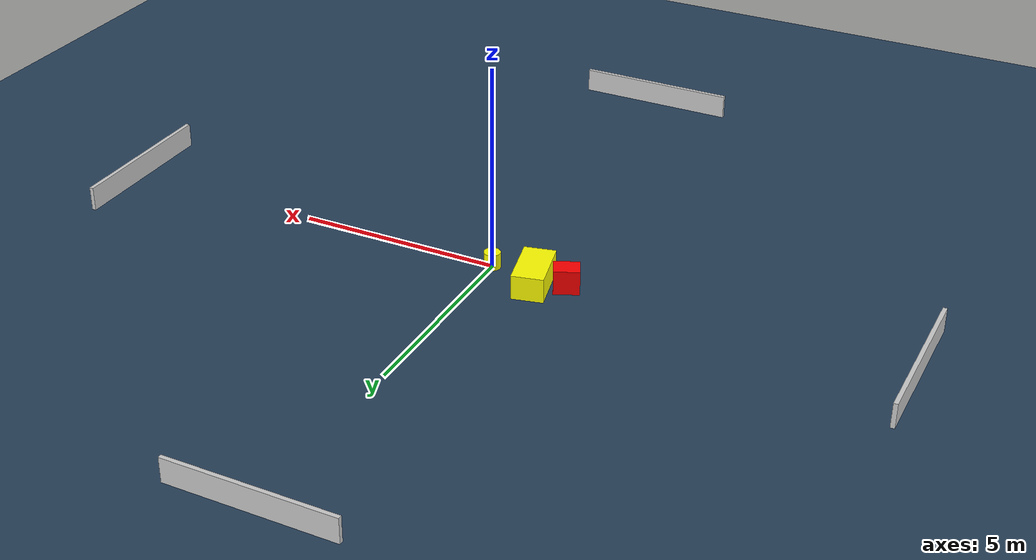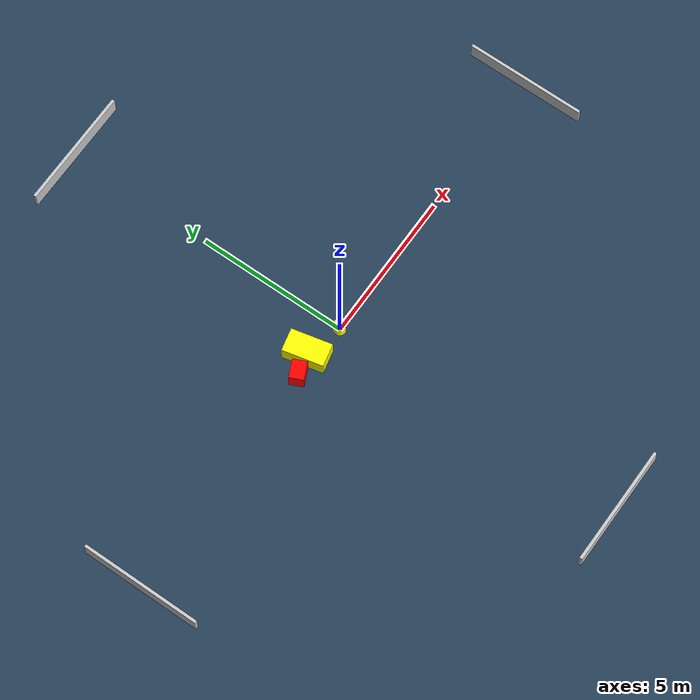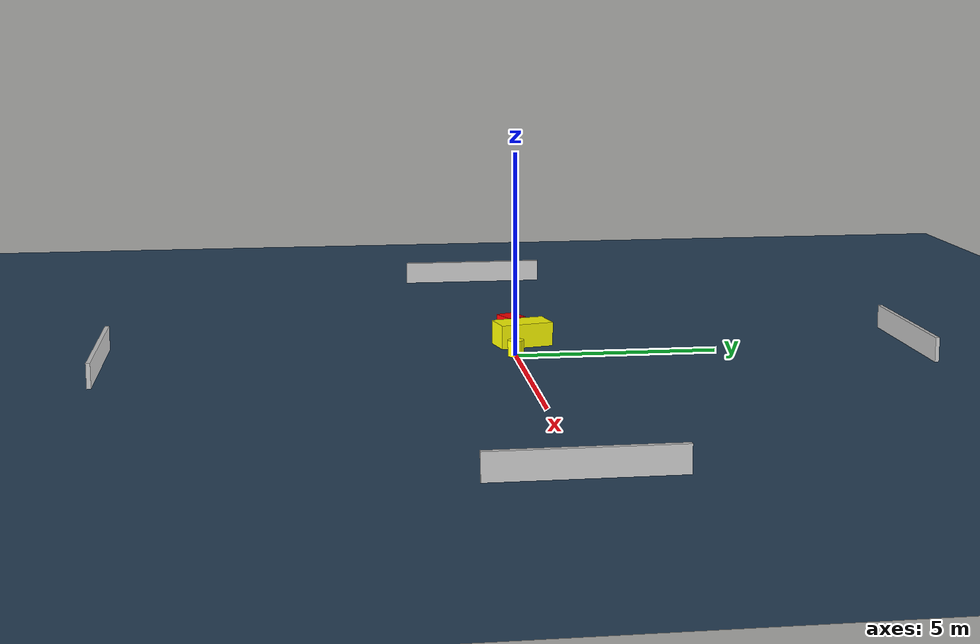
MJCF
<?xml version="1.0" ?>
<mujoco model="generated_environment">
  <option timestep="0.01" integrator="RK4" cone="elliptic"/>
  <default>
    <geom density="1"/>
  </default>
  <asset>
    <texture builtin="gradient" height="3072" name="skybox" rgb1="0.3 0.5 0.7" rgb2="0 0 0" type="skybox" width="512"/>
    <texture builtin="checker" height="300" name="groundplane" rgb1="0.2 0.3 0.4" rgb2="0.1 0.2 0.3" type="2d" width="300"/>
    <material name="groundplane" reflectance="0.2" texrepeat="5 5" texture="groundplane"/>
  </asset>
  <worldbody>
    <light dir="0 0 -1" directional="true" pos="0 0 1.5"/>
    <geom condim="3" friction="0.5 0.005 0.001" material="groundplane" name="floor" pos="0 0 0" size="0 0 0.05" type="plane"/>
    <body name="walls">
      <geom name="wall_1" condim="4" pos="-10.0 0.0 0.3" rgba="0.800000011920929 0.800000011920929 0.800000011920929 1.0" size="0.05 2.0 0.3" type="box"/>
      <geom name="wall_2" condim="4" pos="10.0 0.0 0.3" rgba="0.800000011920929 0.800000011920929 0.800000011920929 1.0" size="0.05 2.0 0.3" type="box"/>
      <geom name="wall_3" condim="4" pos="0.0 -10.0 0.3" rgba="0.800000011920929 0.800000011920929 0.800000011920929 1.0" size="2.0 0.05 0.3" type="box"/>
      <geom name="wall_4" condim="4" pos="0.0 10.0 0.3" rgba="0.800000011920929 0.800000011920929 0.800000011920929 1.0" size="2.0 0.05 0.3" type="box"/>
    </body>
    <body name="robot">
      <joint name="joint_x" type="slide" pos="0 0 0" axis="1 0 0"/>
      <joint name="joint_y" type="slide" pos="0 0 0" axis="0 1 0"/>
      <geom name="robot" type="cylinder" pos="0.0 0.0 0.2" size="0.2 0.2 0.0" mass="5.0" friction="1.0 0.005 0.0001" condim="4" rgba="1.0 1.0 0.0 1.0"/>
    </body>
    <body name="obstacle_1_movable">
      <geom name="obstacle_1_movable" condim="4" pos="-1.2224010476904659 0.3285926611679875 0.3" euler="0 0 192.81679232934687" friction="0.0 0.005 0.001" rgba="1.0 1.0 0.0 1.0" size="0.38069213604931984 0.6778123573075027 0.3" type="box" mass="0.1"/>
      <joint type="free"/>
    </body>
    <body name="obstacle_2_static">
      <geom name="obstacle_2_static" condim="4" pos="-1.9574014909174178 0.13647302794042115 0.3" euler="0 0 204.64228363949314" friction="0.0 0.005 0.001" rgba="1.0 0.0 0.0 1.0" size="0.30594285246278596 0.2391299711392001 0.3" type="box"/>
    </body>
  </worldbody>
  <actuator>
    <motor name="actuator_x" joint="joint_x" gear="1" ctrlrange="-1 1"/>
    <motor name="actuator_y" joint="joint_y" gear="1" ctrlrange="-1 1"/>
  </actuator>
</mujoco>
